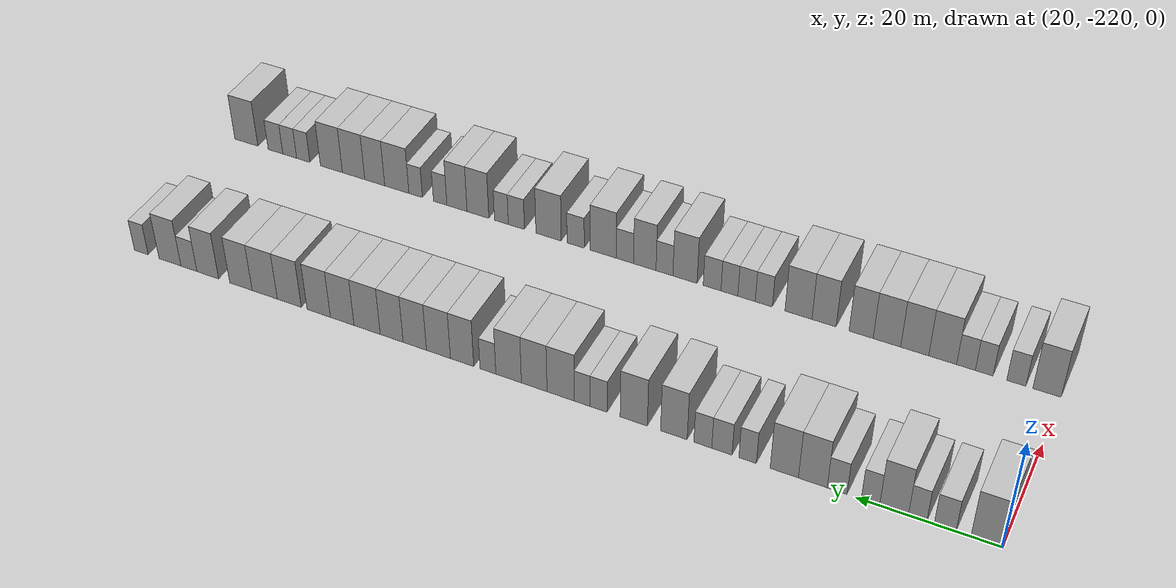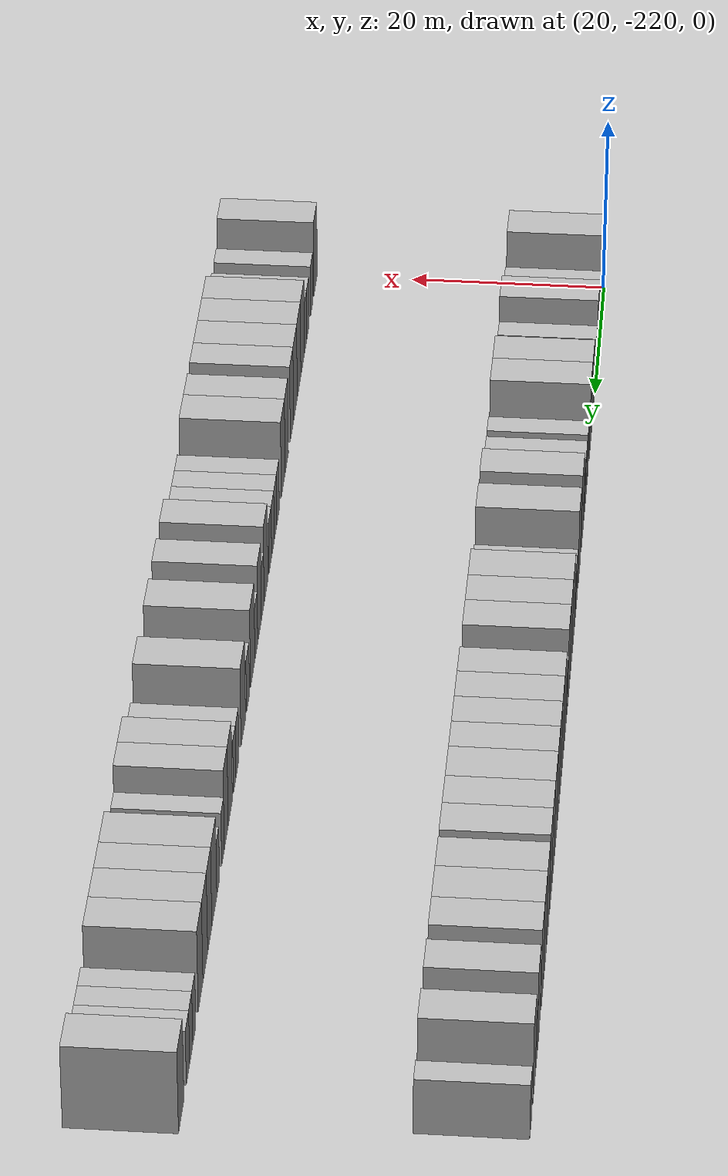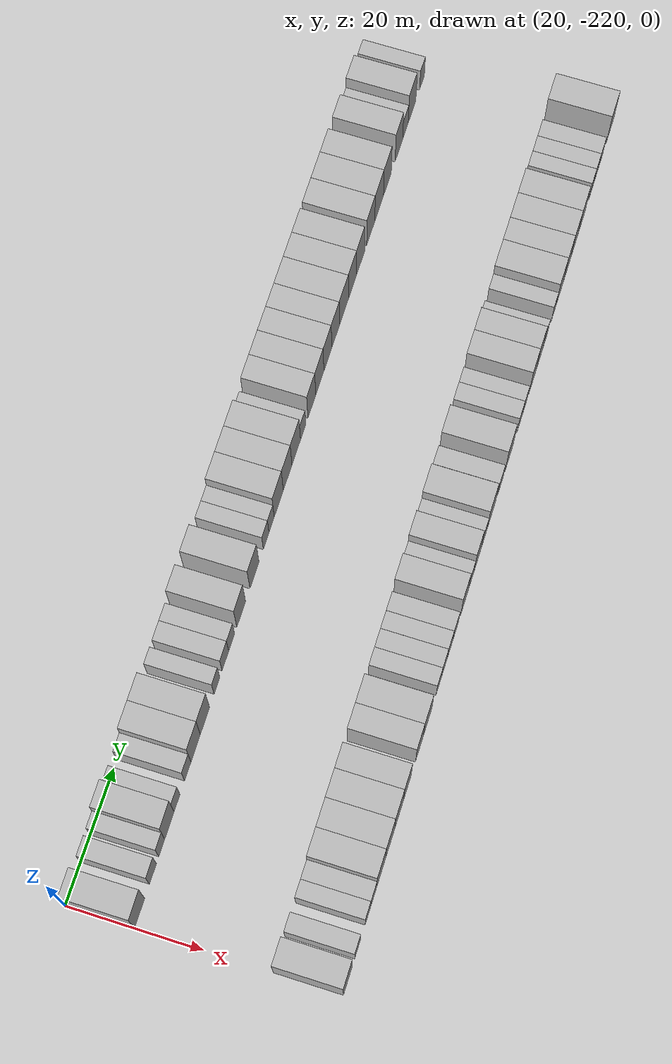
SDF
<sdf version="1.6">
 <world name="default">
  <model name="building_1">
   <static>1</static>
   <pose>25.0000 -217.8745 0 0.000000 0.000000 0.000000</pose>
   <link name="link">
    <pose>0 0 4.50 0 0 0</pose>
    <collision name="collision"><geometry><box><size>10.0000 4.2509 9.0000</size></box></geometry></collision>
    <visual name="visual">
     <cast_shadows>0</cast_shadows>
     <geometry><box><size>10.0000 4.2509 9.0000</size></box></geometry>
     <material>
      <script>
       <uri>model://HANNAS_wall/materials/scripts</uri>
       <uri>model://HANNAS_wall/materials/textures</uri>
       <name>vrc/HANNAS_wall</name>
      </script>
     </material>
    </visual>
   </link>
  </model>
  <model name="building_2">
   <static>1</static>
   <pose>25.0000 -212.2686 0 0.000000 0.000000 0.000000</pose>
   <link name="link">
    <pose>0 0 3.00 0 0 0</pose>
    <collision name="collision"><geometry><box><size>10.0000 2.9609 6.0000</size></box></geometry></collision>
    <visual name="visual">
     <cast_shadows>0</cast_shadows>
     <geometry><box><size>10.0000 2.9609 6.0000</size></box></geometry>
     <material>
      <script>
       <uri>model://HANNAS_wall/materials/scripts</uri>
       <uri>model://HANNAS_wall/materials/textures</uri>
       <name>vrc/HANNAS_wall</name>
      </script>
     </material>
    </visual>
   </link>
  </model>
  <model name="building_3">
   <static>1</static>
   <pose>25.0000 -208.5270 0 0.000000 0.000000 0.000000</pose>
   <link name="link">
    <pose>0 0 3.00 0 0 0</pose>
    <collision name="collision"><geometry><box><size>10.0000 2.5222 6.0000</size></box></geometry></collision>
    <visual name="visual">
     <cast_shadows>0</cast_shadows>
     <geometry><box><size>10.0000 2.5222 6.0000</size></box></geometry>
     <material>
      <script>
       <uri>model://HANNAS_wall/materials/scripts</uri>
       <uri>model://HANNAS_wall/materials/textures</uri>
       <name>vrc/HANNAS_wall</name>
      </script>
     </material>
    </visual>
   </link>
  </model>
  <model name="building_4">
   <static>1</static>
   <pose>25.0000 -205.2757 0 0.000000 0.000000 0.000000</pose>
   <link name="link">
    <pose>0 0 4.50 0 0 0</pose>
    <collision name="collision"><geometry><box><size>10.0000 3.9805 9.0000</size></box></geometry></collision>
    <visual name="visual">
     <cast_shadows>0</cast_shadows>
     <geometry><box><size>10.0000 3.9805 9.0000</size></box></geometry>
     <material>
      <script>
       <uri>model://HANNAS_wall/materials/scripts</uri>
       <uri>model://HANNAS_wall/materials/textures</uri>
       <name>vrc/HANNAS_wall</name>
      </script>
     </material>
    </visual>
   </link>
  </model>
  <model name="building_5">
   <static>1</static>
   <pose>25.0000 -202.0053 0 0.000000 0.000000 0.000000</pose>
   <link name="link">
    <pose>0 0 3.00 0 0 0</pose>
    <collision name="collision"><geometry><box><size>10.0000 2.5604 6.0000</size></box></geometry></collision>
    <visual name="visual">
     <cast_shadows>0</cast_shadows>
     <geometry><box><size>10.0000 2.5604 6.0000</size></box></geometry>
     <material>
      <script>
       <uri>model://HANNAS_wall/materials/scripts</uri>
       <uri>model://HANNAS_wall/materials/textures</uri>
       <name>vrc/HANNAS_wall</name>
      </script>
     </material>
    </visual>
   </link>
  </model>
  <model name="building_6">
   <static>1</static>
   <pose>25.0000 -197.3337 0 0.000000 0.000000 0.000000</pose>
   <link name="link">
    <pose>0 0 3.00 0 0 0</pose>
    <collision name="collision"><geometry><box><size>10.0000 2.7827 6.0000</size></box></geometry></collision>
    <visual name="visual">
     <cast_shadows>0</cast_shadows>
     <geometry><box><size>10.0000 2.7827 6.0000</size></box></geometry>
     <material>
      <script>
       <uri>model://HANNAS_wall/materials/scripts</uri>
       <uri>model://HANNAS_wall/materials/textures</uri>
       <name>vrc/HANNAS_wall</name>
      </script>
     </material>
    </visual>
   </link>
  </model>
  <model name="building_7">
   <static>1</static>
   <pose>25.0000 -193.8902 0 0.000000 0.000000 0.000000</pose>
   <link name="link">
    <pose>0 0 4.50 0 0 0</pose>
    <collision name="collision"><geometry><box><size>10.0000 4.1044 9.0000</size></box></geometry></collision>
    <visual name="visual">
     <cast_shadows>0</cast_shadows>
     <geometry><box><size>10.0000 4.1044 9.0000</size></box></geometry>
     <material>
      <script>
       <uri>model://HANNAS_wall/materials/scripts</uri>
       <uri>model://HANNAS_wall/materials/textures</uri>
       <name>vrc/HANNAS_wall</name>
      </script>
     </material>
    </visual>
   </link>
  </model>
  <model name="building_8">
   <static>1</static>
   <pose>25.0000 -189.8039 0 0.000000 0.000000 0.000000</pose>
   <link name="link">
    <pose>0 0 4.50 0 0 0</pose>
    <collision name="collision"><geometry><box><size>10.0000 4.0681 9.0000</size></box></geometry></collision>
    <visual name="visual">
     <cast_shadows>0</cast_shadows>
     <geometry><box><size>10.0000 4.0681 9.0000</size></box></geometry>
     <material>
      <script>
       <uri>model://HANNAS_wall/materials/scripts</uri>
       <uri>model://HANNAS_wall/materials/textures</uri>
       <name>vrc/HANNAS_wall</name>
      </script>
     </material>
    </visual>
   </link>
  </model>
  <model name="building_9">
   <static>1</static>
   <pose>25.0000 -184.4945 0 0.000000 0.000000 0.000000</pose>
   <link name="link">
    <pose>0 0 3.00 0 0 0</pose>
    <collision name="collision"><geometry><box><size>10.0000 2.5507 6.0000</size></box></geometry></collision>
    <visual name="visual">
     <cast_shadows>0</cast_shadows>
     <geometry><box><size>10.0000 2.5507 6.0000</size></box></geometry>
     <material>
      <script>
       <uri>model://HANNAS_wall/materials/scripts</uri>
       <uri>model://HANNAS_wall/materials/textures</uri>
       <name>vrc/HANNAS_wall</name>
      </script>
     </material>
    </visual>
   </link>
  </model>
  <model name="building_10">
   <static>1</static>
   <pose>25.0000 -180.7242 0 0.000000 0.000000 0.000000</pose>
   <link name="link">
    <pose>0 0 3.00 0 0 0</pose>
    <collision name="collision"><geometry><box><size>10.0000 2.9899 6.0000</size></box></geometry></collision>
    <visual name="visual">
     <cast_shadows>0</cast_shadows>
     <geometry><box><size>10.0000 2.9899 6.0000</size></box></geometry>
     <material>
      <script>
       <uri>model://HANNAS_wall/materials/scripts</uri>
       <uri>model://HANNAS_wall/materials/textures</uri>
       <name>vrc/HANNAS_wall</name>
      </script>
     </material>
    </visual>
   </link>
  </model>
  <model name="building_11">
   <static>1</static>
   <pose>25.0000 -177.8999 0 0.000000 0.000000 0.000000</pose>
   <link name="link">
    <pose>0 0 3.00 0 0 0</pose>
    <collision name="collision"><geometry><box><size>10.0000 2.6587 6.0000</size></box></geometry></collision>
    <visual name="visual">
     <cast_shadows>0</cast_shadows>
     <geometry><box><size>10.0000 2.6587 6.0000</size></box></geometry>
     <material>
      <script>
       <uri>model://HANNAS_wall/materials/scripts</uri>
       <uri>model://HANNAS_wall/materials/textures</uri>
       <name>vrc/HANNAS_wall</name>
      </script>
     </material>
    </visual>
   </link>
  </model>
  <model name="building_12">
   <static>1</static>
   <pose>25.0000 -173.5764 0 0.000000 0.000000 0.000000</pose>
   <link name="link">
    <pose>0 0 4.50 0 0 0</pose>
    <collision name="collision"><geometry><box><size>10.0000 3.9884 9.0000</size></box></geometry></collision>
    <visual name="visual">
     <cast_shadows>0</cast_shadows>
     <geometry><box><size>10.0000 3.9884 9.0000</size></box></geometry>
     <material>
      <script>
       <uri>model://HANNAS_wall/materials/scripts</uri>
       <uri>model://HANNAS_wall/materials/textures</uri>
       <name>vrc/HANNAS_wall</name>
      </script>
     </material>
    </visual>
   </link>
  </model>
  <model name="building_13">
   <static>1</static>
   <pose>25.0000 -167.5079 0 0.000000 0.000000 0.000000</pose>
   <link name="link">
    <pose>0 0 4.50 0 0 0</pose>
    <collision name="collision"><geometry><box><size>10.0000 4.1485 9.0000</size></box></geometry></collision>
    <visual name="visual">
     <cast_shadows>0</cast_shadows>
     <geometry><box><size>10.0000 4.1485 9.0000</size></box></geometry>
     <material>
      <script>
       <uri>model://HANNAS_wall/materials/scripts</uri>
       <uri>model://HANNAS_wall/materials/textures</uri>
       <name>vrc/HANNAS_wall</name>
      </script>
     </material>
    </visual>
   </link>
  </model>
  <model name="building_14">
   <static>1</static>
   <pose>25.0000 -162.1096 0 0.000000 0.000000 0.000000</pose>
   <link name="link">
    <pose>0 0 3.00 0 0 0</pose>
    <collision name="collision"><geometry><box><size>10.0000 2.6481 6.0000</size></box></geometry></collision>
    <visual name="visual">
     <cast_shadows>0</cast_shadows>
     <geometry><box><size>10.0000 2.6481 6.0000</size></box></geometry>
     <material>
      <script>
       <uri>model://HANNAS_wall/materials/scripts</uri>
       <uri>model://HANNAS_wall/materials/textures</uri>
       <name>vrc/HANNAS_wall</name>
      </script>
     </material>
    </visual>
   </link>
  </model>
  <model name="building_15">
   <static>1</static>
   <pose>25.0000 -159.5720 0 0.000000 0.000000 0.000000</pose>
   <link name="link">
    <pose>0 0 3.00 0 0 0</pose>
    <collision name="collision"><geometry><box><size>10.0000 2.4272 6.0000</size></box></geometry></collision>
    <visual name="visual">
     <cast_shadows>0</cast_shadows>
     <geometry><box><size>10.0000 2.4272 6.0000</size></box></geometry>
     <material>
      <script>
       <uri>model://HANNAS_wall/materials/scripts</uri>
       <uri>model://HANNAS_wall/materials/textures</uri>
       <name>vrc/HANNAS_wall</name>
      </script>
     </material>
    </visual>
   </link>
  </model>
  <model name="building_16">
   <static>1</static>
   <pose>25.0000 -156.2153 0 0.000000 0.000000 0.000000</pose>
   <link name="link">
    <pose>0 0 4.50 0 0 0</pose>
    <collision name="collision"><geometry><box><size>10.0000 4.2861 9.0000</size></box></geometry></collision>
    <visual name="visual">
     <cast_shadows>0</cast_shadows>
     <geometry><box><size>10.0000 4.2861 9.0000</size></box></geometry>
     <material>
      <script>
       <uri>model://HANNAS_wall/materials/scripts</uri>
       <uri>model://HANNAS_wall/materials/textures</uri>
       <name>vrc/HANNAS_wall</name>
      </script>
     </material>
    </visual>
   </link>
  </model>
  <model name="building_17">
   <static>1</static>
   <pose>25.0000 -152.0414 0 0.000000 0.000000 0.000000</pose>
   <link name="link">
    <pose>0 0 4.50 0 0 0</pose>
    <collision name="collision"><geometry><box><size>10.0000 4.0616 9.0000</size></box></geometry></collision>
    <visual name="visual">
     <cast_shadows>0</cast_shadows>
     <geometry><box><size>10.0000 4.0616 9.0000</size></box></geometry>
     <material>
      <script>
       <uri>model://HANNAS_wall/materials/scripts</uri>
       <uri>model://HANNAS_wall/materials/textures</uri>
       <name>vrc/HANNAS_wall</name>
      </script>
     </material>
    </visual>
   </link>
  </model>
  <model name="building_18">
   <static>1</static>
   <pose>25.0000 -147.9637 0 0.000000 0.000000 0.000000</pose>
   <link name="link">
    <pose>0 0 4.50 0 0 0</pose>
    <collision name="collision"><geometry><box><size>10.0000 4.0940 9.0000</size></box></geometry></collision>
    <visual name="visual">
     <cast_shadows>0</cast_shadows>
     <geometry><box><size>10.0000 4.0940 9.0000</size></box></geometry>
     <material>
      <script>
       <uri>model://HANNAS_wall/materials/scripts</uri>
       <uri>model://HANNAS_wall/materials/textures</uri>
       <name>vrc/HANNAS_wall</name>
      </script>
     </material>
    </visual>
   </link>
  </model>
  <model name="building_19">
   <static>1</static>
   <pose>25.0000 -144.6385 0 0.000000 0.000000 0.000000</pose>
   <link name="link">
    <pose>0 0 3.00 0 0 0</pose>
    <collision name="collision"><geometry><box><size>10.0000 2.5564 6.0000</size></box></geometry></collision>
    <visual name="visual">
     <cast_shadows>0</cast_shadows>
     <geometry><box><size>10.0000 2.5564 6.0000</size></box></geometry>
     <material>
      <script>
       <uri>model://HANNAS_wall/materials/scripts</uri>
       <uri>model://HANNAS_wall/materials/textures</uri>
       <name>vrc/HANNAS_wall</name>
      </script>
     </material>
    </visual>
   </link>
  </model>
  <model name="building_20">
   <static>1</static>
   <pose>25.0000 -140.4562 0 0.000000 0.000000 0.000000</pose>
   <link name="link">
    <pose>0 0 4.50 0 0 0</pose>
    <collision name="collision"><geometry><box><size>10.0000 3.8082 9.0000</size></box></geometry></collision>
    <visual name="visual">
     <cast_shadows>0</cast_shadows>
     <geometry><box><size>10.0000 3.8082 9.0000</size></box></geometry>
     <material>
      <script>
       <uri>model://HANNAS_wall/materials/scripts</uri>
       <uri>model://HANNAS_wall/materials/textures</uri>
       <name>vrc/HANNAS_wall</name>
      </script>
     </material>
    </visual>
   </link>
  </model>
  <model name="building_21">
   <static>1</static>
   <pose>25.0000 -136.5784 0 0.000000 0.000000 0.000000</pose>
   <link name="link">
    <pose>0 0 4.50 0 0 0</pose>
    <collision name="collision"><geometry><box><size>10.0000 3.9473 9.0000</size></box></geometry></collision>
    <visual name="visual">
     <cast_shadows>0</cast_shadows>
     <geometry><box><size>10.0000 3.9473 9.0000</size></box></geometry>
     <material>
      <script>
       <uri>model://HANNAS_wall/materials/scripts</uri>
       <uri>model://HANNAS_wall/materials/textures</uri>
       <name>vrc/HANNAS_wall</name>
      </script>
     </material>
    </visual>
   </link>
  </model>
  <model name="building_22">
   <static>1</static>
   <pose>25.0000 -132.6678 0 0.000000 0.000000 0.000000</pose>
   <link name="link">
    <pose>0 0 4.50 0 0 0</pose>
    <collision name="collision"><geometry><box><size>10.0000 3.8739 9.0000</size></box></geometry></collision>
    <visual name="visual">
     <cast_shadows>0</cast_shadows>
     <geometry><box><size>10.0000 3.8739 9.0000</size></box></geometry>
     <material>
      <script>
       <uri>model://HANNAS_wall/materials/scripts</uri>
       <uri>model://HANNAS_wall/materials/textures</uri>
       <name>vrc/HANNAS_wall</name>
      </script>
     </material>
    </visual>
   </link>
  </model>
  <model name="building_23">
   <static>1</static>
   <pose>25.0000 -128.8086 0 0.000000 0.000000 0.000000</pose>
   <link name="link">
    <pose>0 0 4.50 0 0 0</pose>
    <collision name="collision"><geometry><box><size>10.0000 3.8445 9.0000</size></box></geometry></collision>
    <visual name="visual">
     <cast_shadows>0</cast_shadows>
     <geometry><box><size>10.0000 3.8445 9.0000</size></box></geometry>
     <material>
      <script>
       <uri>model://HANNAS_wall/materials/scripts</uri>
       <uri>model://HANNAS_wall/materials/textures</uri>
       <name>vrc/HANNAS_wall</name>
      </script>
     </material>
    </visual>
   </link>
  </model>
  <model name="building_24">
   <static>1</static>
   <pose>25.0000 -124.6665 0 0.000000 0.000000 0.000000</pose>
   <link name="link">
    <pose>0 0 4.50 0 0 0</pose>
    <collision name="collision"><geometry><box><size>10.0000 4.4397 9.0000</size></box></geometry></collision>
    <visual name="visual">
     <cast_shadows>0</cast_shadows>
     <geometry><box><size>10.0000 4.4397 9.0000</size></box></geometry>
     <material>
      <script>
       <uri>model://HANNAS_wall/materials/scripts</uri>
       <uri>model://HANNAS_wall/materials/textures</uri>
       <name>vrc/HANNAS_wall</name>
      </script>
     </material>
    </visual>
   </link>
  </model>
  <model name="building_25">
   <static>1</static>
   <pose>25.0000 -120.4193 0 0.000000 0.000000 0.000000</pose>
   <link name="link">
    <pose>0 0 4.50 0 0 0</pose>
    <collision name="collision"><geometry><box><size>10.0000 4.0547 9.0000</size></box></geometry></collision>
    <visual name="visual">
     <cast_shadows>0</cast_shadows>
     <geometry><box><size>10.0000 4.0547 9.0000</size></box></geometry>
     <material>
      <script>
       <uri>model://HANNAS_wall/materials/scripts</uri>
       <uri>model://HANNAS_wall/materials/textures</uri>
       <name>vrc/HANNAS_wall</name>
      </script>
     </material>
    </visual>
   </link>
  </model>
  <model name="building_26">
   <static>1</static>
   <pose>25.0000 -116.3784 0 0.000000 0.000000 0.000000</pose>
   <link name="link">
    <pose>0 0 4.50 0 0 0</pose>
    <collision name="collision"><geometry><box><size>10.0000 4.0271 9.0000</size></box></geometry></collision>
    <visual name="visual">
     <cast_shadows>0</cast_shadows>
     <geometry><box><size>10.0000 4.0271 9.0000</size></box></geometry>
     <material>
      <script>
       <uri>model://HANNAS_wall/materials/scripts</uri>
       <uri>model://HANNAS_wall/materials/textures</uri>
       <name>vrc/HANNAS_wall</name>
      </script>
     </material>
    </visual>
   </link>
  </model>
  <model name="building_27">
   <static>1</static>
   <pose>25.0000 -111.2638 0 0.000000 0.000000 0.000000</pose>
   <link name="link">
    <pose>0 0 4.50 0 0 0</pose>
    <collision name="collision"><geometry><box><size>10.0000 4.2020 9.0000</size></box></geometry></collision>
    <visual name="visual">
     <cast_shadows>0</cast_shadows>
     <geometry><box><size>10.0000 4.2020 9.0000</size></box></geometry>
     <material>
      <script>
       <uri>model://HANNAS_wall/materials/scripts</uri>
       <uri>model://HANNAS_wall/materials/textures</uri>
       <name>vrc/HANNAS_wall</name>
      </script>
     </material>
    </visual>
   </link>
  </model>
  <model name="building_28">
   <static>1</static>
   <pose>25.0000 -106.9423 0 0.000000 0.000000 0.000000</pose>
   <link name="link">
    <pose>0 0 4.50 0 0 0</pose>
    <collision name="collision"><geometry><box><size>10.0000 4.4410 9.0000</size></box></geometry></collision>
    <visual name="visual">
     <cast_shadows>0</cast_shadows>
     <geometry><box><size>10.0000 4.4410 9.0000</size></box></geometry>
     <material>
      <script>
       <uri>model://HANNAS_wall/materials/scripts</uri>
       <uri>model://HANNAS_wall/materials/textures</uri>
       <name>vrc/HANNAS_wall</name>
      </script>
     </material>
    </visual>
   </link>
  </model>
  <model name="building_29">
   <static>1</static>
   <pose>25.0000 -102.7202 0 0.000000 0.000000 0.000000</pose>
   <link name="link">
    <pose>0 0 4.50 0 0 0</pose>
    <collision name="collision"><geometry><box><size>10.0000 4.0032 9.0000</size></box></geometry></collision>
    <visual name="visual">
     <cast_shadows>0</cast_shadows>
     <geometry><box><size>10.0000 4.0032 9.0000</size></box></geometry>
     <material>
      <script>
       <uri>model://HANNAS_wall/materials/scripts</uri>
       <uri>model://HANNAS_wall/materials/textures</uri>
       <name>vrc/HANNAS_wall</name>
      </script>
     </material>
    </visual>
   </link>
  </model>
  <model name="building_30">
   <static>1</static>
   <pose>25.0000 -96.7549 0 0.000000 0.000000 0.000000</pose>
   <link name="link">
    <pose>0 0 4.50 0 0 0</pose>
    <collision name="collision"><geometry><box><size>10.0000 3.9276 9.0000</size></box></geometry></collision>
    <visual name="visual">
     <cast_shadows>0</cast_shadows>
     <geometry><box><size>10.0000 3.9276 9.0000</size></box></geometry>
     <material>
      <script>
       <uri>model://HANNAS_wall/materials/scripts</uri>
       <uri>model://HANNAS_wall/materials/textures</uri>
       <name>vrc/HANNAS_wall</name>
      </script>
     </material>
    </visual>
   </link>
  </model>
  <model name="building_31">
   <static>1</static>
   <pose>25.0000 -93.3359 0 0.000000 0.000000 0.000000</pose>
   <link name="link">
    <pose>0 0 3.00 0 0 0</pose>
    <collision name="collision"><geometry><box><size>10.0000 2.9104 6.0000</size></box></geometry></collision>
    <visual name="visual">
     <cast_shadows>0</cast_shadows>
     <geometry><box><size>10.0000 2.9104 6.0000</size></box></geometry>
     <material>
      <script>
       <uri>model://HANNAS_wall/materials/scripts</uri>
       <uri>model://HANNAS_wall/materials/textures</uri>
       <name>vrc/HANNAS_wall</name>
      </script>
     </material>
    </visual>
   </link>
  </model>
  <model name="building_32">
   <static>1</static>
   <pose>25.0000 -89.8623 0 0.000000 0.000000 0.000000</pose>
   <link name="link">
    <pose>0 0 4.50 0 0 0</pose>
    <collision name="collision"><geometry><box><size>10.0000 4.0367 9.0000</size></box></geometry></collision>
    <visual name="visual">
     <cast_shadows>0</cast_shadows>
     <geometry><box><size>10.0000 4.0367 9.0000</size></box></geometry>
     <material>
      <script>
       <uri>model://HANNAS_wall/materials/scripts</uri>
       <uri>model://HANNAS_wall/materials/textures</uri>
       <name>vrc/HANNAS_wall</name>
      </script>
     </material>
    </visual>
   </link>
  </model>
  <model name="building_33">
   <static>1</static>
   <pose>25.0000 -84.5632 0 0.000000 0.000000 0.000000</pose>
   <link name="link">
    <pose>0 0 3.00 0 0 0</pose>
    <collision name="collision"><geometry><box><size>10.0000 2.5615 6.0000</size></box></geometry></collision>
    <visual name="visual">
     <cast_shadows>0</cast_shadows>
     <geometry><box><size>10.0000 2.5615 6.0000</size></box></geometry>
     <material>
      <script>
       <uri>model://HANNAS_wall/materials/scripts</uri>
       <uri>model://HANNAS_wall/materials/textures</uri>
       <name>vrc/HANNAS_wall</name>
      </script>
     </material>
    </visual>
   </link>
  </model>
  <model name="building_96">
   <static>1</static>
   <pose>55.0000 -217.9607 0 0.000000 0.000000 0.000000</pose>
   <link name="link">
    <pose>0 0 4.50 0 0 0</pose>
    <collision name="collision"><geometry><box><size>10.0000 4.0785 9.0000</size></box></geometry></collision>
    <visual name="visual">
     <cast_shadows>0</cast_shadows>
     <geometry><box><size>10.0000 4.0785 9.0000</size></box></geometry>
     <material>
      <script>
       <uri>model://HANNAS_wall/materials/scripts</uri>
       <uri>model://HANNAS_wall/materials/textures</uri>
       <name>vrc/HANNAS_wall</name>
      </script>
     </material>
    </visual>
   </link>
  </model>
  <model name="building_97">
   <static>1</static>
   <pose>55.0000 -213.5329 0 0.000000 0.000000 0.000000</pose>
   <link name="link">
    <pose>0 0 3.00 0 0 0</pose>
    <collision name="collision"><geometry><box><size>10.0000 2.7772 6.0000</size></box></geometry></collision>
    <visual name="visual">
     <cast_shadows>0</cast_shadows>
     <geometry><box><size>10.0000 2.7772 6.0000</size></box></geometry>
     <material>
      <script>
       <uri>model://HANNAS_wall/materials/scripts</uri>
       <uri>model://HANNAS_wall/materials/textures</uri>
       <name>vrc/HANNAS_wall</name>
      </script>
     </material>
    </visual>
   </link>
  </model>
  <model name="building_98">
   <static>1</static>
   <pose>55.0000 -208.8478 0 0.000000 0.000000 0.000000</pose>
   <link name="link">
    <pose>0 0 3.00 0 0 0</pose>
    <collision name="collision"><geometry><box><size>10.0000 2.5930 6.0000</size></box></geometry></collision>
    <visual name="visual">
     <cast_shadows>0</cast_shadows>
     <geometry><box><size>10.0000 2.5930 6.0000</size></box></geometry>
     <material>
      <script>
       <uri>model://HANNAS_wall/materials/scripts</uri>
       <uri>model://HANNAS_wall/materials/textures</uri>
       <name>vrc/HANNAS_wall</name>
      </script>
     </material>
    </visual>
   </link>
  </model>
  <model name="building_99">
   <static>1</static>
   <pose>55.0000 -206.1656 0 0.000000 0.000000 0.000000</pose>
   <link name="link">
    <pose>0 0 3.00 0 0 0</pose>
    <collision name="collision"><geometry><box><size>10.0000 2.7714 6.0000</size></box></geometry></collision>
    <visual name="visual">
     <cast_shadows>0</cast_shadows>
     <geometry><box><size>10.0000 2.7714 6.0000</size></box></geometry>
     <material>
      <script>
       <uri>model://HANNAS_wall/materials/scripts</uri>
       <uri>model://HANNAS_wall/materials/textures</uri>
       <name>vrc/HANNAS_wall</name>
      </script>
     </material>
    </visual>
   </link>
  </model>
  <model name="building_100">
   <static>1</static>
   <pose>55.0000 -202.7019 0 0.000000 0.000000 0.000000</pose>
   <link name="link">
    <pose>0 0 4.50 0 0 0</pose>
    <collision name="collision"><geometry><box><size>10.0000 4.1560 9.0000</size></box></geometry></collision>
    <visual name="visual">
     <cast_shadows>0</cast_shadows>
     <geometry><box><size>10.0000 4.1560 9.0000</size></box></geometry>
     <material>
      <script>
       <uri>model://HANNAS_wall/materials/scripts</uri>
       <uri>model://HANNAS_wall/materials/textures</uri>
       <name>vrc/HANNAS_wall</name>
      </script>
     </material>
    </visual>
   </link>
  </model>
  <model name="building_101">
   <static>1</static>
   <pose>55.0000 -198.5149 0 0.000000 0.000000 0.000000</pose>
   <link name="link">
    <pose>0 0 4.50 0 0 0</pose>
    <collision name="collision"><geometry><box><size>10.0000 4.2180 9.0000</size></box></geometry></collision>
    <visual name="visual">
     <cast_shadows>0</cast_shadows>
     <geometry><box><size>10.0000 4.2180 9.0000</size></box></geometry>
     <material>
      <script>
       <uri>model://HANNAS_wall/materials/scripts</uri>
       <uri>model://HANNAS_wall/materials/textures</uri>
       <name>vrc/HANNAS_wall</name>
      </script>
     </material>
    </visual>
   </link>
  </model>
  <model name="building_102">
   <static>1</static>
   <pose>55.0000 -194.3121 0 0.000000 0.000000 0.000000</pose>
   <link name="link">
    <pose>0 0 4.50 0 0 0</pose>
    <collision name="collision"><geometry><box><size>10.0000 4.1875 9.0000</size></box></geometry></collision>
    <visual name="visual">
     <cast_shadows>0</cast_shadows>
     <geometry><box><size>10.0000 4.1875 9.0000</size></box></geometry>
     <material>
      <script>
       <uri>model://HANNAS_wall/materials/scripts</uri>
       <uri>model://HANNAS_wall/materials/textures</uri>
       <name>vrc/HANNAS_wall</name>
      </script>
     </material>
    </visual>
   </link>
  </model>
  <model name="building_103">
   <static>1</static>
   <pose>55.0000 -190.3692 0 0.000000 0.000000 0.000000</pose>
   <link name="link">
    <pose>0 0 4.50 0 0 0</pose>
    <collision name="collision"><geometry><box><size>10.0000 3.6983 9.0000</size></box></geometry></collision>
    <visual name="visual">
     <cast_shadows>0</cast_shadows>
     <geometry><box><size>10.0000 3.6983 9.0000</size></box></geometry>
     <material>
      <script>
       <uri>model://HANNAS_wall/materials/scripts</uri>
       <uri>model://HANNAS_wall/materials/textures</uri>
       <name>vrc/HANNAS_wall</name>
      </script>
     </material>
    </visual>
   </link>
  </model>
  <model name="building_104">
   <static>1</static>
   <pose>55.0000 -184.6356 0 0.000000 0.000000 0.000000</pose>
   <link name="link">
    <pose>0 0 4.50 0 0 0</pose>
    <collision name="collision"><geometry><box><size>10.0000 3.7689 9.0000</size></box></geometry></collision>
    <visual name="visual">
     <cast_shadows>0</cast_shadows>
     <geometry><box><size>10.0000 3.7689 9.0000</size></box></geometry>
     <material>
      <script>
       <uri>model://HANNAS_wall/materials/scripts</uri>
       <uri>model://HANNAS_wall/materials/textures</uri>
       <name>vrc/HANNAS_wall</name>
      </script>
     </material>
    </visual>
   </link>
  </model>
  <model name="building_105">
   <static>1</static>
   <pose>55.0000 -180.6331 0 0.000000 0.000000 0.000000</pose>
   <link name="link">
    <pose>0 0 4.50 0 0 0</pose>
    <collision name="collision"><geometry><box><size>10.0000 4.2362 9.0000</size></box></geometry></collision>
    <visual name="visual">
     <cast_shadows>0</cast_shadows>
     <geometry><box><size>10.0000 4.2362 9.0000</size></box></geometry>
     <material>
      <script>
       <uri>model://HANNAS_wall/materials/scripts</uri>
       <uri>model://HANNAS_wall/materials/textures</uri>
       <name>vrc/HANNAS_wall</name>
      </script>
     </material>
    </visual>
   </link>
  </model>
  <model name="building_106">
   <static>1</static>
   <pose>55.0000 -175.1534 0 0.000000 0.000000 0.000000</pose>
   <link name="link">
    <pose>0 0 3.00 0 0 0</pose>
    <collision name="collision"><geometry><box><size>10.0000 2.7232 6.0000</size></box></geometry></collision>
    <visual name="visual">
     <cast_shadows>0</cast_shadows>
     <geometry><box><size>10.0000 2.7232 6.0000</size></box></geometry>
     <material>
      <script>
       <uri>model://HANNAS_wall/materials/scripts</uri>
       <uri>model://HANNAS_wall/materials/textures</uri>
       <name>vrc/HANNAS_wall</name>
      </script>
     </material>
    </visual>
   </link>
  </model>
  <model name="building_107">
   <static>1</static>
   <pose>55.0000 -172.3982 0 0.000000 0.000000 0.000000</pose>
   <link name="link">
    <pose>0 0 3.00 0 0 0</pose>
    <collision name="collision"><geometry><box><size>10.0000 2.7871 6.0000</size></box></geometry></collision>
    <visual name="visual">
     <cast_shadows>0</cast_shadows>
     <geometry><box><size>10.0000 2.7871 6.0000</size></box></geometry>
     <material>
      <script>
       <uri>model://HANNAS_wall/materials/scripts</uri>
       <uri>model://HANNAS_wall/materials/textures</uri>
       <name>vrc/HANNAS_wall</name>
      </script>
     </material>
    </visual>
   </link>
  </model>
  <model name="building_108">
   <static>1</static>
   <pose>55.0000 -169.6443 0 0.000000 0.000000 0.000000</pose>
   <link name="link">
    <pose>0 0 3.00 0 0 0</pose>
    <collision name="collision"><geometry><box><size>10.0000 2.7206 6.0000</size></box></geometry></collision>
    <visual name="visual">
     <cast_shadows>0</cast_shadows>
     <geometry><box><size>10.0000 2.7206 6.0000</size></box></geometry>
     <material>
      <script>
       <uri>model://HANNAS_wall/materials/scripts</uri>
       <uri>model://HANNAS_wall/materials/textures</uri>
       <name>vrc/HANNAS_wall</name>
      </script>
     </material>
    </visual>
   </link>
  </model>
  <model name="building_109">
   <static>1</static>
   <pose>55.0000 -166.8382 0 0.000000 0.000000 0.000000</pose>
   <link name="link">
    <pose>0 0 3.00 0 0 0</pose>
    <collision name="collision"><geometry><box><size>10.0000 2.8916 6.0000</size></box></geometry></collision>
    <visual name="visual">
     <cast_shadows>0</cast_shadows>
     <geometry><box><size>10.0000 2.8916 6.0000</size></box></geometry>
     <material>
      <script>
       <uri>model://HANNAS_wall/materials/scripts</uri>
       <uri>model://HANNAS_wall/materials/textures</uri>
       <name>vrc/HANNAS_wall</name>
      </script>
     </material>
    </visual>
   </link>
  </model>
  <model name="building_110">
   <static>1</static>
   <pose>55.0000 -162.4092 0 0.000000 0.000000 0.000000</pose>
   <link name="link">
    <pose>0 0 4.50 0 0 0</pose>
    <collision name="collision"><geometry><box><size>10.0000 3.9664 9.0000</size></box></geometry></collision>
    <visual name="visual">
     <cast_shadows>0</cast_shadows>
     <geometry><box><size>10.0000 3.9664 9.0000</size></box></geometry>
     <material>
      <script>
       <uri>model://HANNAS_wall/materials/scripts</uri>
       <uri>model://HANNAS_wall/materials/textures</uri>
       <name>vrc/HANNAS_wall</name>
      </script>
     </material>
    </visual>
   </link>
  </model>
  <model name="building_111">
   <static>1</static>
   <pose>55.0000 -159.0303 0 0.000000 0.000000 0.000000</pose>
   <link name="link">
    <pose>0 0 3.00 0 0 0</pose>
    <collision name="collision"><geometry><box><size>10.0000 2.7914 6.0000</size></box></geometry></collision>
    <visual name="visual">
     <cast_shadows>0</cast_shadows>
     <geometry><box><size>10.0000 2.7914 6.0000</size></box></geometry>
     <material>
      <script>
       <uri>model://HANNAS_wall/materials/scripts</uri>
       <uri>model://HANNAS_wall/materials/textures</uri>
       <name>vrc/HANNAS_wall</name>
      </script>
     </material>
    </visual>
   </link>
  </model>
  <model name="building_112">
   <static>1</static>
   <pose>55.0000 -155.7506 0 0.000000 0.000000 0.000000</pose>
   <link name="link">
    <pose>0 0 4.50 0 0 0</pose>
    <collision name="collision"><geometry><box><size>10.0000 3.7679 9.0000</size></box></geometry></collision>
    <visual name="visual">
     <cast_shadows>0</cast_shadows>
     <geometry><box><size>10.0000 3.7679 9.0000</size></box></geometry>
     <material>
      <script>
       <uri>model://HANNAS_wall/materials/scripts</uri>
       <uri>model://HANNAS_wall/materials/textures</uri>
       <name>vrc/HANNAS_wall</name>
      </script>
     </material>
    </visual>
   </link>
  </model>
  <model name="building_113">
   <static>1</static>
   <pose>55.0000 -152.4150 0 0.000000 0.000000 0.000000</pose>
   <link name="link">
    <pose>0 0 3.00 0 0 0</pose>
    <collision name="collision"><geometry><box><size>10.0000 2.9033 6.0000</size></box></geometry></collision>
    <visual name="visual">
     <cast_shadows>0</cast_shadows>
     <geometry><box><size>10.0000 2.9033 6.0000</size></box></geometry>
     <material>
      <script>
       <uri>model://HANNAS_wall/materials/scripts</uri>
       <uri>model://HANNAS_wall/materials/textures</uri>
       <name>vrc/HANNAS_wall</name>
      </script>
     </material>
    </visual>
   </link>
  </model>
  <model name="building_114">
   <static>1</static>
   <pose>55.0000 -148.7650 0 0.000000 0.000000 0.000000</pose>
   <link name="link">
    <pose>0 0 4.50 0 0 0</pose>
    <collision name="collision"><geometry><box><size>10.0000 4.3969 9.0000</size></box></geometry></collision>
    <visual name="visual">
     <cast_shadows>0</cast_shadows>
     <geometry><box><size>10.0000 4.3969 9.0000</size></box></geometry>
     <material>
      <script>
       <uri>model://HANNAS_wall/materials/scripts</uri>
       <uri>model://HANNAS_wall/materials/textures</uri>
       <name>vrc/HANNAS_wall</name>
      </script>
     </material>
    </visual>
   </link>
  </model>
  <model name="building_115">
   <static>1</static>
   <pose>55.0000 -144.0954 0 0.000000 0.000000 0.000000</pose>
   <link name="link">
    <pose>0 0 3.00 0 0 0</pose>
    <collision name="collision"><geometry><box><size>10.0000 2.9422 6.0000</size></box></geometry></collision>
    <visual name="visual">
     <cast_shadows>0</cast_shadows>
     <geometry><box><size>10.0000 2.9422 6.0000</size></box></geometry>
     <material>
      <script>
       <uri>model://HANNAS_wall/materials/scripts</uri>
       <uri>model://HANNAS_wall/materials/textures</uri>
       <name>vrc/HANNAS_wall</name>
      </script>
     </material>
    </visual>
   </link>
  </model>
  <model name="building_116">
   <static>1</static>
   <pose>55.0000 -139.4336 0 0.000000 0.000000 0.000000</pose>
   <link name="link">
    <pose>0 0 4.50 0 0 0</pose>
    <collision name="collision"><geometry><box><size>10.0000 4.3813 9.0000</size></box></geometry></collision>
    <visual name="visual">
     <cast_shadows>0</cast_shadows>
     <geometry><box><size>10.0000 4.3813 9.0000</size></box></geometry>
     <material>
      <script>
       <uri>model://HANNAS_wall/materials/scripts</uri>
       <uri>model://HANNAS_wall/materials/textures</uri>
       <name>vrc/HANNAS_wall</name>
      </script>
     </material>
    </visual>
   </link>
  </model>
  <model name="building_117">
   <static>1</static>
   <pose>55.0000 -133.8298 0 0.000000 0.000000 0.000000</pose>
   <link name="link">
    <pose>0 0 3.00 0 0 0</pose>
    <collision name="collision"><geometry><box><size>10.0000 2.8263 6.0000</size></box></geometry></collision>
    <visual name="visual">
     <cast_shadows>0</cast_shadows>
     <geometry><box><size>10.0000 2.8263 6.0000</size></box></geometry>
     <material>
      <script>
       <uri>model://HANNAS_wall/materials/scripts</uri>
       <uri>model://HANNAS_wall/materials/textures</uri>
       <name>vrc/HANNAS_wall</name>
      </script>
     </material>
    </visual>
   </link>
  </model>
  <model name="building_118">
   <static>1</static>
   <pose>55.0000 -131.2038 0 0.000000 0.000000 0.000000</pose>
   <link name="link">
    <pose>0 0 3.00 0 0 0</pose>
    <collision name="collision"><geometry><box><size>10.0000 2.4258 6.0000</size></box></geometry></collision>
    <visual name="visual">
     <cast_shadows>0</cast_shadows>
     <geometry><box><size>10.0000 2.4258 6.0000</size></box></geometry>
     <material>
      <script>
       <uri>model://HANNAS_wall/materials/scripts</uri>
       <uri>model://HANNAS_wall/materials/textures</uri>
       <name>vrc/HANNAS_wall</name>
      </script>
     </material>
    </visual>
   </link>
  </model>
  <model name="building_119">
   <static>1</static>
   <pose>55.0000 -127.0549 0 0.000000 0.000000 0.000000</pose>
   <link name="link">
    <pose>0 0 4.50 0 0 0</pose>
    <collision name="collision"><geometry><box><size>10.0000 3.8719 9.0000</size></box></geometry></collision>
    <visual name="visual">
     <cast_shadows>0</cast_shadows>
     <geometry><box><size>10.0000 3.8719 9.0000</size></box></geometry>
     <material>
      <script>
       <uri>model://HANNAS_wall/materials/scripts</uri>
       <uri>model://HANNAS_wall/materials/textures</uri>
       <name>vrc/HANNAS_wall</name>
      </script>
     </material>
    </visual>
   </link>
  </model>
  <model name="building_120">
   <static>1</static>
   <pose>55.0000 -123.3094 0 0.000000 0.000000 0.000000</pose>
   <link name="link">
    <pose>0 0 4.50 0 0 0</pose>
    <collision name="collision"><geometry><box><size>10.0000 3.6192 9.0000</size></box></geometry></collision>
    <visual name="visual">
     <cast_shadows>0</cast_shadows>
     <geometry><box><size>10.0000 3.6192 9.0000</size></box></geometry>
     <material>
      <script>
       <uri>model://HANNAS_wall/materials/scripts</uri>
       <uri>model://HANNAS_wall/materials/textures</uri>
       <name>vrc/HANNAS_wall</name>
      </script>
     </material>
    </visual>
   </link>
  </model>
  <model name="building_121">
   <static>1</static>
   <pose>55.0000 -120.2891 0 0.000000 0.000000 0.000000</pose>
   <link name="link">
    <pose>0 0 3.00 0 0 0</pose>
    <collision name="collision"><geometry><box><size>10.0000 2.4214 6.0000</size></box></geometry></collision>
    <visual name="visual">
     <cast_shadows>0</cast_shadows>
     <geometry><box><size>10.0000 2.4214 6.0000</size></box></geometry>
     <material>
      <script>
       <uri>model://HANNAS_wall/materials/scripts</uri>
       <uri>model://HANNAS_wall/materials/textures</uri>
       <name>vrc/HANNAS_wall</name>
      </script>
     </material>
    </visual>
   </link>
  </model>
  <model name="building_122">
   <static>1</static>
   <pose>55.0000 -115.8436 0 0.000000 0.000000 0.000000</pose>
   <link name="link">
    <pose>0 0 3.00 0 0 0</pose>
    <collision name="collision"><geometry><box><size>10.0000 2.4695 6.0000</size></box></geometry></collision>
    <visual name="visual">
     <cast_shadows>0</cast_shadows>
     <geometry><box><size>10.0000 2.4695 6.0000</size></box></geometry>
     <material>
      <script>
       <uri>model://HANNAS_wall/materials/scripts</uri>
       <uri>model://HANNAS_wall/materials/textures</uri>
       <name>vrc/HANNAS_wall</name>
      </script>
     </material>
    </visual>
   </link>
  </model>
  <model name="building_123">
   <static>1</static>
   <pose>55.0000 -112.3865 0 0.000000 0.000000 0.000000</pose>
   <link name="link">
    <pose>0 0 4.50 0 0 0</pose>
    <collision name="collision"><geometry><box><size>10.0000 4.4447 9.0000</size></box></geometry></collision>
    <visual name="visual">
     <cast_shadows>0</cast_shadows>
     <geometry><box><size>10.0000 4.4447 9.0000</size></box></geometry>
     <material>
      <script>
       <uri>model://HANNAS_wall/materials/scripts</uri>
       <uri>model://HANNAS_wall/materials/textures</uri>
       <name>vrc/HANNAS_wall</name>
      </script>
     </material>
    </visual>
   </link>
  </model>
  <model name="building_124">
   <static>1</static>
   <pose>55.0000 -108.3108 0 0.000000 0.000000 0.000000</pose>
   <link name="link">
    <pose>0 0 4.50 0 0 0</pose>
    <collision name="collision"><geometry><box><size>10.0000 3.7068 9.0000</size></box></geometry></collision>
    <visual name="visual">
     <cast_shadows>0</cast_shadows>
     <geometry><box><size>10.0000 3.7068 9.0000</size></box></geometry>
     <material>
      <script>
       <uri>model://HANNAS_wall/materials/scripts</uri>
       <uri>model://HANNAS_wall/materials/textures</uri>
       <name>vrc/HANNAS_wall</name>
      </script>
     </material>
    </visual>
   </link>
  </model>
  <model name="building_125">
   <static>1</static>
   <pose>55.0000 -104.3667 0 0.000000 0.000000 0.000000</pose>
   <link name="link">
    <pose>0 0 4.50 0 0 0</pose>
    <collision name="collision"><geometry><box><size>10.0000 4.1814 9.0000</size></box></geometry></collision>
    <visual name="visual">
     <cast_shadows>0</cast_shadows>
     <geometry><box><size>10.0000 4.1814 9.0000</size></box></geometry>
     <material>
      <script>
       <uri>model://HANNAS_wall/materials/scripts</uri>
       <uri>model://HANNAS_wall/materials/textures</uri>
       <name>vrc/HANNAS_wall</name>
      </script>
     </material>
    </visual>
   </link>
  </model>
  <model name="building_126">
   <static>1</static>
   <pose>55.0000 -100.2025 0 0.000000 0.000000 0.000000</pose>
   <link name="link">
    <pose>0 0 4.50 0 0 0</pose>
    <collision name="collision"><geometry><box><size>10.0000 4.1470 9.0000</size></box></geometry></collision>
    <visual name="visual">
     <cast_shadows>0</cast_shadows>
     <geometry><box><size>10.0000 4.1470 9.0000</size></box></geometry>
     <material>
      <script>
       <uri>model://HANNAS_wall/materials/scripts</uri>
       <uri>model://HANNAS_wall/materials/textures</uri>
       <name>vrc/HANNAS_wall</name>
      </script>
     </material>
    </visual>
   </link>
  </model>
  <model name="building_127">
   <static>1</static>
   <pose>55.0000 -94.8597 0 0.000000 0.000000 0.000000</pose>
   <link name="link">
    <pose>0 0 3.00 0 0 0</pose>
    <collision name="collision"><geometry><box><size>10.0000 2.5386 6.0000</size></box></geometry></collision>
    <visual name="visual">
     <cast_shadows>0</cast_shadows>
     <geometry><box><size>10.0000 2.5386 6.0000</size></box></geometry>
     <material>
      <script>
       <uri>model://HANNAS_wall/materials/scripts</uri>
       <uri>model://HANNAS_wall/materials/textures</uri>
       <name>vrc/HANNAS_wall</name>
      </script>
     </material>
    </visual>
   </link>
  </model>
  <model name="building_128">
   <static>1</static>
   <pose>55.0000 -92.2692 0 0.000000 0.000000 0.000000</pose>
   <link name="link">
    <pose>0 0 3.00 0 0 0</pose>
    <collision name="collision"><geometry><box><size>10.0000 2.6424 6.0000</size></box></geometry></collision>
    <visual name="visual">
     <cast_shadows>0</cast_shadows>
     <geometry><box><size>10.0000 2.6424 6.0000</size></box></geometry>
     <material>
      <script>
       <uri>model://HANNAS_wall/materials/scripts</uri>
       <uri>model://HANNAS_wall/materials/textures</uri>
       <name>vrc/HANNAS_wall</name>
      </script>
     </material>
    </visual>
   </link>
  </model>
  <model name="building_129">
   <static>1</static>
   <pose>55.0000 -89.5318 0 0.000000 0.000000 0.000000</pose>
   <link name="link">
    <pose>0 0 3.00 0 0 0</pose>
    <collision name="collision"><geometry><box><size>10.0000 2.8323 6.0000</size></box></geometry></collision>
    <visual name="visual">
     <cast_shadows>0</cast_shadows>
     <geometry><box><size>10.0000 2.8323 6.0000</size></box></geometry>
     <material>
      <script>
       <uri>model://HANNAS_wall/materials/scripts</uri>
       <uri>model://HANNAS_wall/materials/textures</uri>
       <name>vrc/HANNAS_wall</name>
      </script>
     </material>
    </visual>
   </link>
  </model>
  <model name="building_130">
   <static>1</static>
   <pose>55.0000 -83.8748 0 0.000000 0.000000 0.000000</pose>
   <link name="link">
    <pose>0 0 4.50 0 0 0</pose>
    <collision name="collision"><geometry><box><size>10.0000 4.4816 9.0000</size></box></geometry></collision>
    <visual name="visual">
     <cast_shadows>0</cast_shadows>
     <geometry><box><size>10.0000 4.4816 9.0000</size></box></geometry>
     <material>
      <script>
       <uri>model://HANNAS_wall/materials/scripts</uri>
       <uri>model://HANNAS_wall/materials/textures</uri>
       <name>vrc/HANNAS_wall</name>
      </script>
     </material>
    </visual>
   </link>
  </model>
 </world>
</sdf>
